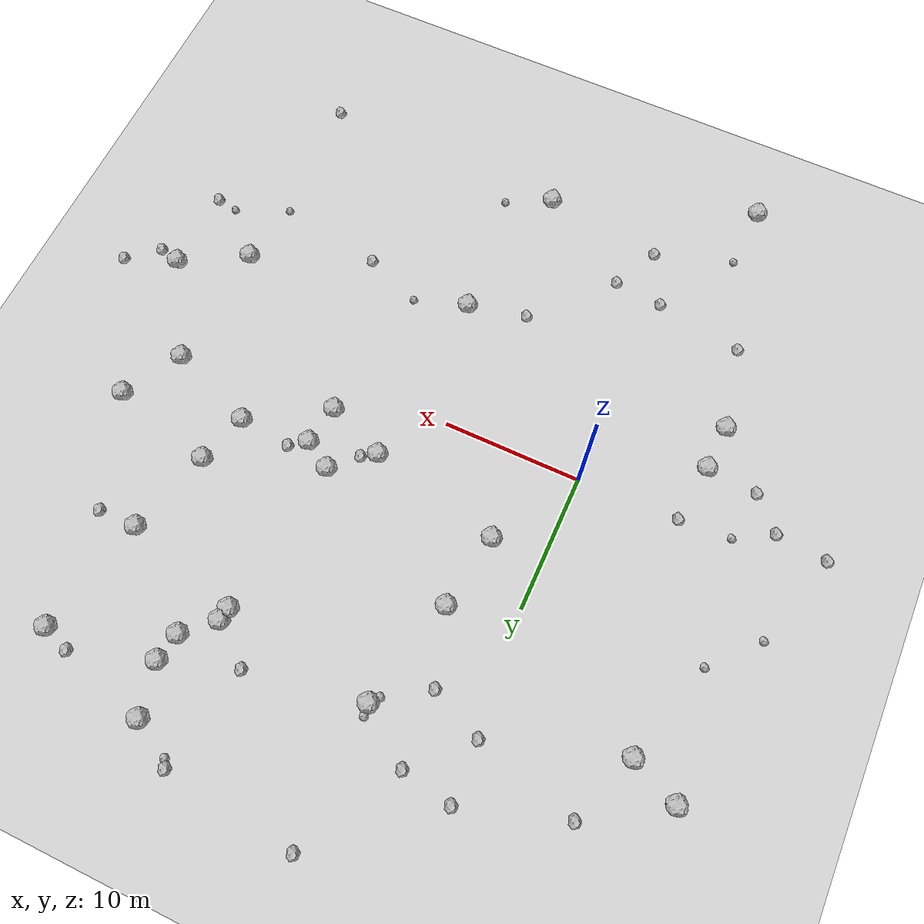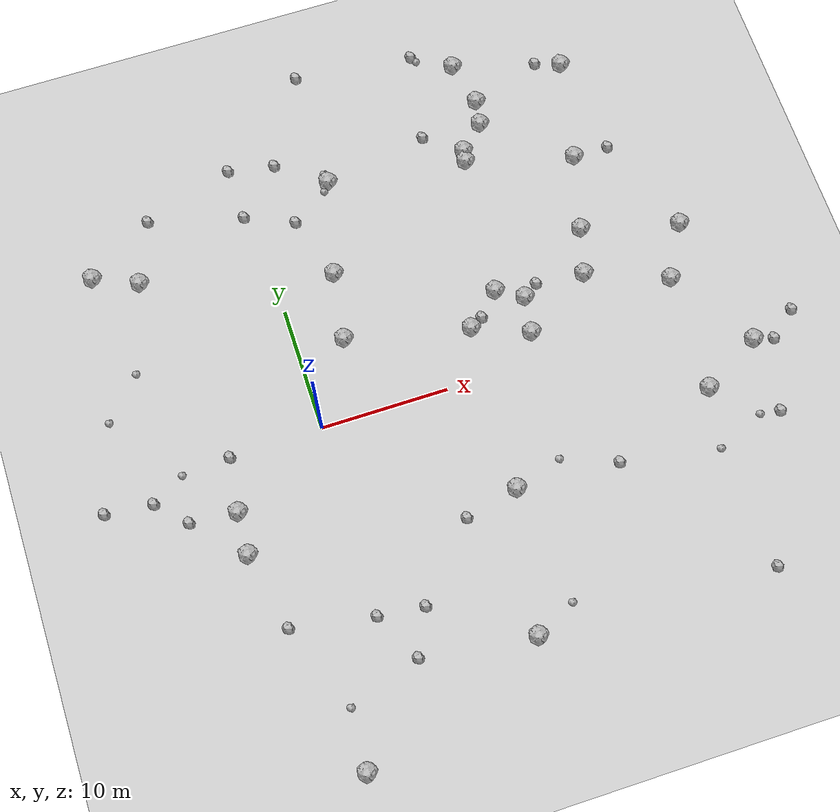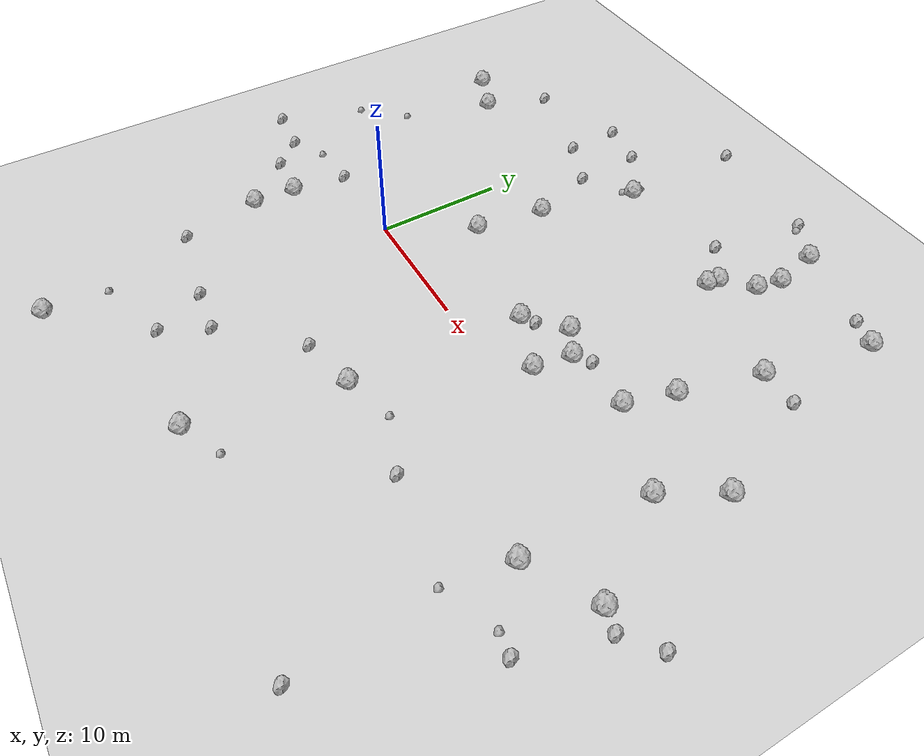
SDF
<sdf version="1.6">
 <world name="default">
  <include><uri>model://custom_ground</uri></include>
  <include><uri>model://sun</uri></include>
  <model name="rock1_0_0">
   <include><uri>model://rock1</uri><pose>23.220988975469275 5.820510014229846 0.5 0 0 0</pose></include>
  </model>
  <model name="rock1_0_1">
   <include><uri>model://rock1</uri><pose>33.792794628919744 -3.4639320478377265 0.5 0 0 0</pose></include>
  </model>
  <model name="rock1_0_2">
   <include><uri>model://rock1</uri><pose>31.907524415553496 7.5591250391693094 0.5 0 0 0</pose></include>
  </model>
  <model name="rock1_0_3">
   <include><uri>model://rock1</uri><pose>17.69303677341592 2.3890902227098962 0.5 0 0 0</pose></include>
  </model>
  <model name="rock1_0_4">
   <include><uri>model://rock1</uri><pose>20.086462942664994 22.993657708955226 0.5 0 0 0</pose></include>
  </model>
  <model name="rock1_0_5">
   <include><uri>model://rock1</uri><pose>4.604178330353918 11.873711802360248 0.5 0 0 0</pose></include>
  </model>
  <model name="rock1_0_6">
   <include><uri>model://rock1</uri><pose>18.171385407057883 5.347319320574684 0.5 0 0 0</pose></include>
  </model>
  <model name="rock1_0_7">
   <include><uri>model://rock1</uri><pose>-7.957063894364719 -7.845925525694234 0.5 0 0 0</pose></include>
  </model>
  <model name="rock1_0_8">
   <include><uri>model://rock1</uri><pose>-13.511640705450695 17.271928409048357 0.5 0 0 0</pose></include>
  </model>
  <model name="rock1_0_9">
   <include><uri>model://rock1</uri><pose>27.783730473057183 24.1337596332079 0.5 0 0 0</pose></include>
  </model>
  <model name="rock1_0_10">
   <include><uri>model://rock1</uri><pose>-10.081660505605615 15.766339073819267 0.5 0 0 0</pose></include>
  </model>
  <model name="rock1_0_11">
   <include><uri>model://rock1</uri><pose>17.67839904515685 19.0067844423302 0.5 0 0 0</pose></include>
  </model>
  <model name="rock1_0_12">
   <include><uri>model://rock1</uri><pose>6.4673340647353506 19.694675308255057 0.5 0 0 0</pose></include>
  </model>
  <model name="rock1_0_13">
   <include><uri>model://rock1</uri><pose>10.368140857335401 -20.162608091959576 0.5 0 0 0</pose></include>
  </model>
  <model name="rock1_0_14">
   <include><uri>model://rock1</uri><pose>-7.781905939895221 -4.483248876895917 0.5 0 0 0</pose></include>
  </model>
  <model name="rock1_0_15">
   <include><uri>model://rock1</uri><pose>13.37877628182784 4.165034022379942 0.5 0 0 0</pose></include>
  </model>
  <model name="rock1_0_16">
   <include><uri>model://rock1</uri><pose>29.54694392304328 3.3268915799610426 0.5 0 0 0</pose></include>
  </model>
  <model name="rock1_0_17">
   <include><uri>model://rock1</uri><pose>3.7447524847904 6.374596430432277 0.5 0 0 0</pose></include>
  </model>
  <model name="rock1_0_18">
   <include><uri>model://rock1</uri><pose>17.533979230223032 18.065082020691577 0.5 0 0 0</pose></include>
  </model>
  <model name="rock1_0_19">
   <include><uri>model://rock1</uri><pose>12.510756158098431 -9.159904143006841 0.5 0 0 0</pose></include>
  </model>
  <model name="rock1_0_20">
   <include><uri>model://rock1</uri><pose>24.300779887882335 9.55364378787938 0.5 0 0 0</pose></include>
  </model>
  <model name="rock1_0_21">
   <include><uri>model://rock1</uri><pose>19.708788993844422 20.947242781302087 0.5 0 0 0</pose></include>
  </model>
  <model name="rock1_0_22">
   <include><uri>model://rock1</uri><pose>25.980464051153646 15.7580526682218 0.5 0 0 0</pose></include>
  </model>
  <model name="rock1_0_23">
   <include><uri>model://rock1</uri><pose>29.07899307705862 -6.1403031985036485 0.5 0 0 0</pose></include>
  </model>
  <model name="rock1_0_24">
   <include><uri>model://rock1</uri><pose>-4.281392717502843 -25.60531287514989 0.5 0 0 0</pose></include>
  </model>
  <model name="rock1_0_25">
   <include><uri>model://rock1</uri><pose>16.137524039556567 6.581284793056831 0.5 0 0 0</pose></include>
  </model>
  <model name="rock1_0_26">
   <include><uri>model://rock1</uri><pose>19.280701794232726 26.689143217446812 0.5 0 0 0</pose></include>
  </model>
  <model name="rock2_0_0">
   <include><uri>model://rock2</uri><pose>19.36325180937098 6.2084218198945464 0.3 0 0 0</pose></include>
  </model>
  <model name="rock2_0_1">
   <include><uri>model://rock2</uri><pose>-6.718758750992587 -14.022659918875286 0.3 0 0 0</pose></include>
  </model>
  <model name="rock2_0_2">
   <include><uri>model://rock2</uri><pose>35.322692928760404 -3.8488249798559764 0.3 0 0 0</pose></include>
  </model>
  <model name="rock2_0_3">
   <include><uri>model://rock2</uri><pose>20.511510948463673 -9.601988709594252 0.3 0 0 0</pose></include>
  </model>
  <model name="rock2_0_4">
   <include><uri>model://rock2</uri><pose>2.9568355254754017 17.122855757103594 0.3 0 0 0</pose></include>
  </model>
  <model name="rock2_0_5">
   <include><uri>model://rock2</uri><pose>-0.8234523239721305 18.810734238481615 0.3 0 0 0</pose></include>
  </model>
  <model name="rock2_0_6">
   <include><uri>model://rock2</uri><pose>-8.19229693847026 20.79419822051441 0.3 0 0 0</pose></include>
  </model>
  <model name="rock2_0_7">
   <include><uri>model://rock2</uri><pose>-17.3346130708738 -1.55752797480784 0.3 0 0 0</pose></include>
  </model>
  <model name="rock2_0_8">
   <include><uri>model://rock2</uri><pose>2.7387045986148024 22.48302691366154 0.3 0 0 0</pose></include>
  </model>
  <model name="rock2_0_9">
   <include><uri>model://rock2</uri><pose>28.802625711199525 15.802874557716386 0.3 0 0 0</pose></include>
  </model>
  <model name="rock2_0_10">
   <include><uri>model://rock2</uri><pose>3.2537242921829126 -15.548270872032411 0.3 0 0 0</pose></include>
  </model>
  <model name="rock2_0_11">
   <include><uri>model://rock2</uri><pose>-11.50146437787158 -4.150143977890632 0.3 0 0 0</pose></include>
  </model>
  <model name="rock2_0_12">
   <include><uri>model://rock2</uri><pose>33.56200931945244 -9.515262635274691 0.3 0 0 0</pose></include>
  </model>
  <model name="rock2_0_13">
   <include><uri>model://rock2</uri><pose>6.6488730563404665 29.683984393056704 0.3 0 0 0</pose></include>
  </model>
  <model name="rock2_0_14">
   <include><uri>model://rock2</uri><pose>8.214373072764872 -10.153410761887045 0.3 0 0 0</pose></include>
  </model>
  <model name="rock2_0_15">
   <include><uri>model://rock2</uri><pose>25.76922836252701 24.918830348880334 0.3 0 0 0</pose></include>
  </model>
  <model name="rock2_0_16">
   <include><uri>model://rock2</uri><pose>28.76322943701974 -20.732616652225282 0.3 0 0 0</pose></include>
  </model>
  <model name="rock2_0_17">
   <include><uri>model://rock2</uri><pose>14.398317114473919 4.802330255670725 0.3 0 0 0</pose></include>
  </model>
  <model name="rock2_0_18">
   <include><uri>model://rock2</uri><pose>-13.635559538411359 -1.9275287236685088 0.3 0 0 0</pose></include>
  </model>
  <model name="rock2_0_19">
   <include><uri>model://rock2</uri><pose>14.858727074843607 21.236115074915936 0.3 0 0 0</pose></include>
  </model>
  <model name="rock2_0_20">
   <include><uri>model://rock2</uri><pose>-0.33577112230636885 -15.1539646909324 0.3 0 0 0</pose></include>
  </model>
  <model name="rock2_0_21">
   <include><uri>model://rock2</uri><pose>-0.9223862508070333 23.15767991120515 0.3 0 0 0</pose></include>
  </model>
  <model name="rock2_0_22">
   <include><uri>model://rock2</uri><pose>37.51508306629333 -2.008959090508643 0.3 0 0 0</pose></include>
  </model>
  <model name="rock2_0_23">
   <include><uri>model://rock2</uri><pose>16.221493210366006 28.666467969682543 0.3 0 0 0</pose></include>
  </model>
  <model name="rock2_0_24">
   <include><uri>model://rock2</uri><pose>1.575839912541639 -18.990855574833596 0.3 0 0 0</pose></include>
  </model>
  <model name="rock2_0_25">
   <include><uri>model://rock2</uri><pose>-7.255186921168022 -0.1578821125414933 0.3 0 0 0</pose></include>
  </model>
  <model name="rock2_0_26">
   <include><uri>model://rock2</uri><pose>20.060225200781495 23.197183530257597 0.3 0 0 0</pose></include>
  </model>
  <model name="rock3_0_0">
   <include><uri>model://rock3</uri><pose>-12.295662351623072 8.515622090377818 0.2 0 0 0</pose></include>
  </model>
  <model name="rock3_0_1">
   <include><uri>model://rock3</uri><pose>5.91461576531686 19.015597601108226 0.2 0 0 0</pose></include>
  </model>
  <model name="rock3_0_2">
   <include><uri>model://rock3</uri><pose>28.177330041536166 -10.966150777736495 0.2 0 0 0</pose></include>
  </model>
  <model name="rock3_0_3">
   <include><uri>model://rock3</uri><pose>-15.233732462656207 5.286902148351139 0.2 0 0 0</pose></include>
  </model>
  <model name="rock3_0_4">
   <include><uri>model://rock3</uri><pose>32.004686356206946 -9.312155160674475 0.2 0 0 0</pose></include>
  </model>
  <model name="rock3_0_5">
   <include><uri>model://rock3</uri><pose>6.337639276499068 20.536190064571784 0.2 0 0 0</pose></include>
  </model>
  <model name="rock3_0_6">
   <include><uri>model://rock3</uri><pose>16.533144397623616 28.09847777647162 0.2 0 0 0</pose></include>
  </model>
  <model name="rock3_0_7">
   <include><uri>model://rock3</uri><pose>-4.080290153212404 -20.925567370392862 0.2 0 0 0</pose></include>
  </model>
  <model name="rock3_0_8">
   <include><uri>model://rock3</uri><pose>16.288282804550647 -7.970815864971197 0.2 0 0 0</pose></include>
  </model>
  <model name="rock3_0_9">
   <include><uri>model://rock3</uri><pose>13.534108779670802 -18.61159352352351 0.2 0 0 0</pose></include>
  </model>
  <model name="rock3_0_10">
   <include><uri>model://rock3</uri><pose>-11.040588071443821 -0.4414981107553153 0.2 0 0 0</pose></include>
  </model>
 </world>
</sdf>
